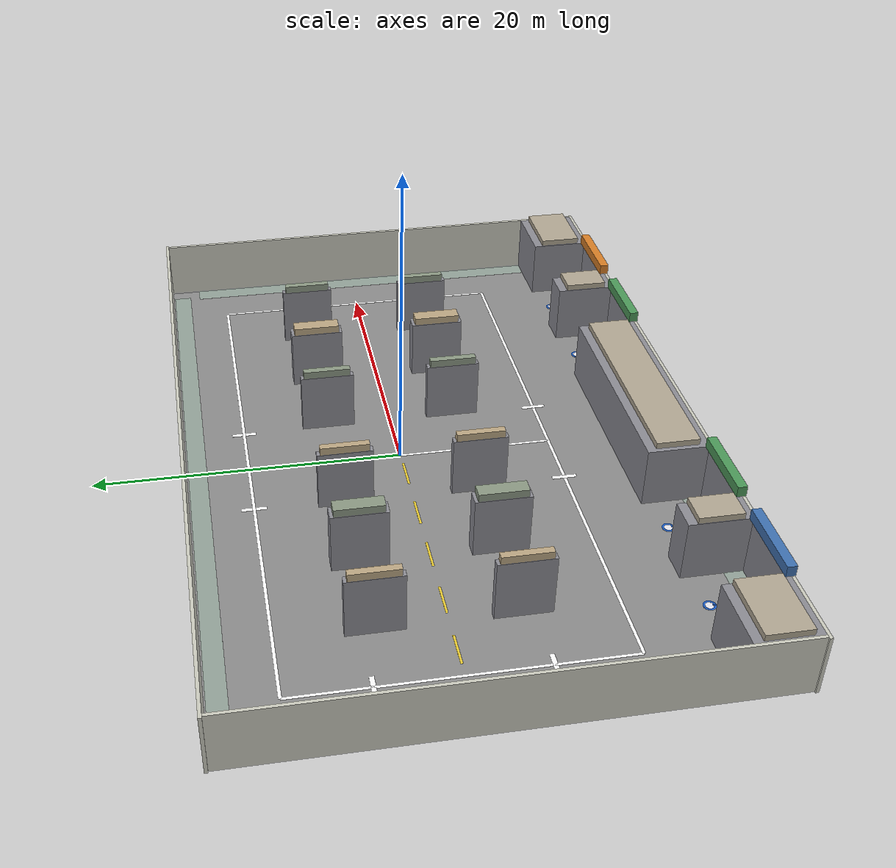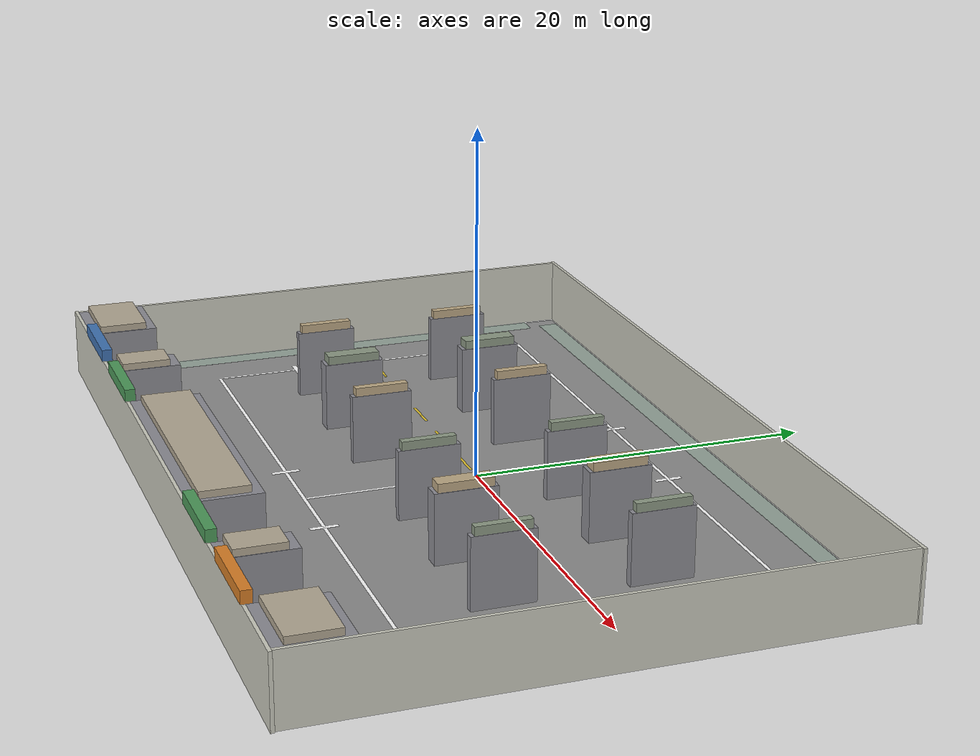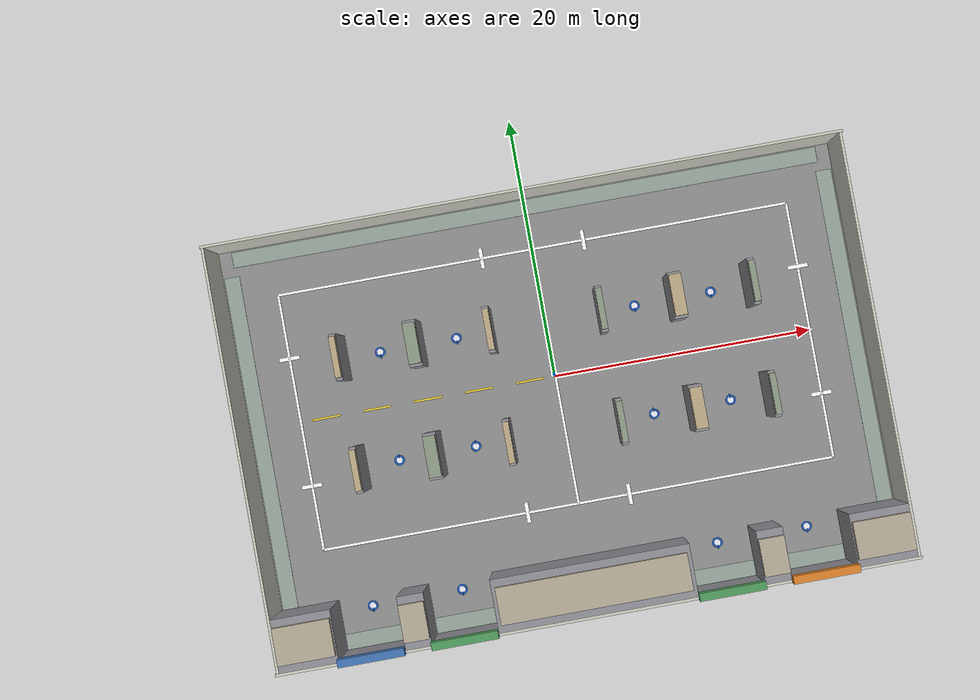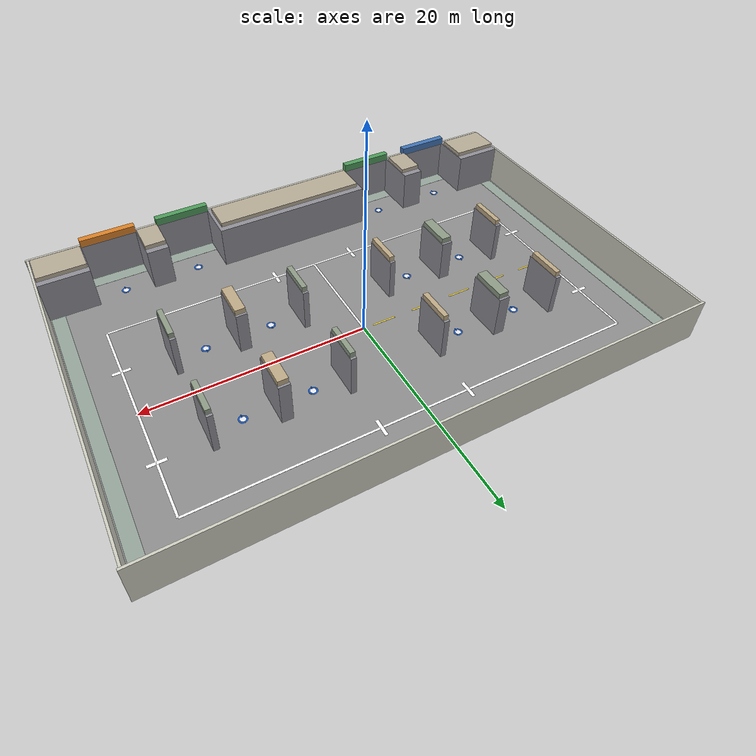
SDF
<?xml version="1.0" ?>
<sdf version="1.8">
  <world name="warehouse">

    <!-- The arena's 2 ms fixed step at 500 Hz, so joint rates measured on
         the M4 arena stay comparable here. -->
    <physics type="ode">
      <max_step_size>0.002</max_step_size>
      <real_time_factor>1.0</real_time_factor>
      <real_time_update_rate>500</real_time_update_rate>
    </physics>

    <plugin name="gz::sim::systems::Physics" filename="libgz-sim-physics-system.so"/>
    <plugin name="gz::sim::systems::UserCommands" filename="libgz-sim-user-commands-system.so"/>
    <plugin name="gz::sim::systems::SceneBroadcaster" filename="libgz-sim-scene-broadcaster-system.so"/>

    <!-- Required by the vehicle's three gpu_lidar sensors. Without this no
         scan topic is ever advertised and the failure is silent. -->
    <plugin name="gz::sim::systems::Sensors" filename="libgz-sim-sensors-system.so">
      <render_engine>ogre2</render_engine>
    </plugin>

    <!-- ======================= GUI CONFIGURATION ====================== -->
    <gui fullscreen="0">

      <plugin filename="MinimalScene" name="3D View">
        <gz-gui>
          <title>3D View</title>
          <property type="bool" key="showTitleBar">false</property>
          <property type="string" key="state">docked</property>
        </gz-gui>
        <engine>ogre2</engine>
        <scene>scene</scene>
        <ambient_light>1.0 1.0 1.0</ambient_light>
        <background_color>0.7 0.7 0.7</background_color>
        <!-- Looking north east from over the south west corner, so the
             dock apron, both charging bays and the west end of the rack
             block are in frame with no camera move. -->
        <camera_pose>-19.0 -16.0 12.0 0 0.52 0.72</camera_pose>
      </plugin>

      <plugin filename="GzSceneManager" name="Scene Manager">
        <gz-gui>
          <property key="resizable" type="bool">false</property>
          <property key="width" type="double">5</property>
          <property key="height" type="double">5</property>
          <property key="state" type="string">floating</property>
          <property key="showTitleBar" type="bool">false</property>
        </gz-gui>
      </plugin>

      <plugin filename="InteractiveViewControl" name="Interactive view control">
        <gz-gui>
          <property key="resizable" type="bool">false</property>
          <property key="width" type="double">5</property>
          <property key="height" type="double">5</property>
          <property key="state" type="string">floating</property>
          <property key="showTitleBar" type="bool">false</property>
        </gz-gui>
      </plugin>

      <plugin filename="CameraTracking" name="Camera Tracking">
        <gz-gui>
          <property key="resizable" type="bool">false</property>
          <property key="width" type="double">5</property>
          <property key="height" type="double">5</property>
          <property key="state" type="string">floating</property>
          <property key="showTitleBar" type="bool">false</property>
        </gz-gui>
      </plugin>

      <plugin filename="EntityContextMenuPlugin" name="Entity context menu">
        <gz-gui>
          <property key="state" type="string">floating</property>
          <property key="width" type="double">5</property>
          <property key="height" type="double">5</property>
          <property key="showTitleBar" type="bool">false</property>
        </gz-gui>
      </plugin>

      <plugin filename="WorldControl" name="World control">
        <gz-gui>
          <title>World control</title>
          <property type="bool" key="showTitleBar">false</property>
          <property type="bool" key="resizable">false</property>
          <property type="double" key="height">72</property>
          <property type="double" key="z">1</property>
          <property type="string" key="state">floating</property>
          <anchors target="3D View">
            <line own="left" target="left"/>
            <line own="bottom" target="bottom"/>
          </anchors>
        </gz-gui>
        <play_pause>true</play_pause>
        <step>true</step>
        <start_paused>false</start_paused>
        <use_event>true</use_event>
      </plugin>

      <!-- The real time factor readout, on screen for any recording. It is
           NOT a measurement instrument: the value it shows is gz's smoothed
           instantaneous factor. -->
      <plugin filename="WorldStats" name="World stats">
        <gz-gui>
          <title>World stats</title>
          <property type="bool" key="showTitleBar">false</property>
          <property type="bool" key="resizable">false</property>
          <property type="double" key="height">110</property>
          <property type="double" key="width">290</property>
          <property type="double" key="z">1</property>
          <property type="string" key="state">floating</property>
          <anchors target="3D View">
            <line own="right" target="right"/>
            <line own="bottom" target="bottom"/>
          </anchors>
        </gz-gui>
        <sim_time>true</sim_time>
        <real_time>true</real_time>
        <real_time_factor>true</real_time_factor>
        <iterations>true</iterations>
      </plugin>

      <!-- The beams. Docked rather than floating so the topic and display
           type combo boxes are visible without hunting: which scanner is on
           screen is not guessable from the picture. -->
      <plugin filename="VisualizeLidar" name="Visualize Lidar">
        <gz-gui>
          <title>Visualize lidar</title>
          <property type="string" key="state">docked</property>
        </gz-gui>
      </plugin>

      <plugin filename="Screenshot" name="Screenshot">
        <gz-gui>
          <property type="bool" key="showTitleBar">false</property>
          <property type="string" key="state">floating</property>
          <property type="double" key="width">100</property>
          <property type="double" key="height">50</property>
        </gz-gui>
      </plugin>

    </gui>

    <scene>
      <ambient>1 1 1 1</ambient>
      <background>0.7 0.7 0.7 1</background>
      <shadows>false</shadows>
      <grid>false</grid>
    </scene>

    <light name="sun" type="directional">
      <cast_shadows>false</cast_shadows>
      <pose>0 0 12 0 0 0</pose>
      <diffuse>1.0 1.0 1.0 1</diffuse>
      <specular>0.2 0.2 0.2 1</specular>
      <direction>-0.3 0.3 -1.0</direction>
    </light>

    <gravity>0 0 -9.8</gravity>

    <!-- ============================ Floor ============================ -->
    <!-- Plain concrete, mu 1.0 as in the arena: the tricycle has a single
         driven wheel and a slippery floor turns traction figures into tyre
         slip figures. Plane 48 x 32, inner hall faces. -->
    <model name="Floor">
      <static>true</static>
      <pose>0 -2 0 0 0 0</pose>
      <link name="link">
        <collision name="collision">
          <geometry>
            <plane><normal>0 0 1</normal><size>48 32</size></plane>
          </geometry>
          <surface>
            <friction><ode><mu>1.0</mu><mu2>1.0</mu2></ode></friction>
          </surface>
        </collision>
        <visual name="visual">
          <geometry>
            <plane><normal>0 0 1</normal><size>48 32</size></plane>
          </geometry>
          <material>
            <ambient>0.55 0.55 0.55 1</ambient>
            <diffuse>0.55 0.55 0.55 1</diffuse>
          </material>
        </visual>
      </link>
    </model>

    <!-- ======================= Perimeter walls ======================= -->
    <!-- 0.20 thick, 4.00 high, inner faces at x = +-24.00 and
         y = -18.00 / +14.00. No dock door cut: annex bays are the only
         way through the south strip. -->
    <model name="WallNorth">
      <static>true</static>
      <link name="link">
        <collision name="wallnorth_collision">
          <pose>0.000 14.100 2.000 0 0 0</pose>
          <geometry><box><size>48.600 0.200 4.000</size></box></geometry>
        </collision>
        <visual name="wallnorth_visual">
          <pose>0.000 14.100 2.000 0 0 0</pose>
          <geometry><box><size>48.600 0.200 4.000</size></box></geometry>
          <material><ambient>0.80 0.80 0.75 1</ambient><diffuse>0.80 0.80 0.75 1</diffuse></material>
        </visual>
      </link>
    </model>
    <model name="WallSouth">
      <static>true</static>
      <link name="link">
        <collision name="wallsouth_collision">
          <pose>0.000 -18.100 2.000 0 0 0</pose>
          <geometry><box><size>48.600 0.200 4.000</size></box></geometry>
        </collision>
        <visual name="wallsouth_visual">
          <pose>0.000 -18.100 2.000 0 0 0</pose>
          <geometry><box><size>48.600 0.200 4.000</size></box></geometry>
          <material><ambient>0.80 0.80 0.75 1</ambient><diffuse>0.80 0.80 0.75 1</diffuse></material>
        </visual>
      </link>
    </model>
    <model name="WallEast">
      <static>true</static>
      <link name="link">
        <collision name="walleast_collision">
          <pose>24.100 -2.000 2.000 0 0 0</pose>
          <geometry><box><size>0.200 32.000 4.000</size></box></geometry>
        </collision>
        <visual name="walleast_visual">
          <pose>24.100 -2.000 2.000 0 0 0</pose>
          <geometry><box><size>0.200 32.000 4.000</size></box></geometry>
          <material><ambient>0.80 0.80 0.75 1</ambient><diffuse>0.80 0.80 0.75 1</diffuse></material>
        </visual>
      </link>
    </model>
    <model name="WallWest">
      <static>true</static>
      <link name="link">
        <collision name="wallwest_collision">
          <pose>-24.100 -2.000 2.000 0 0 0</pose>
          <geometry><box><size>0.200 32.000 4.000</size></box></geometry>
        </collision>
        <visual name="wallwest_visual">
          <pose>-24.100 -2.000 2.000 0 0 0</pose>
          <geometry><box><size>0.200 32.000 4.000</size></box></geometry>
          <material><ambient>0.80 0.80 0.75 1</ambient><diffuse>0.80 0.80 0.75 1</diffuse></material>
        </visual>
      </link>
    </model>
    <!-- ======================= Obstacles ======================== -->
    <model name="RackNW1">
      <static>true</static>
      <pose>-15.750 4.250 2.000 0 0 0</pose>
      <link name="link">
        <collision name="collision">
          <geometry><box><size>0.500 3.500 4.000</size></box></geometry>
        </collision>
        <visual name="visual">
          <geometry><box><size>0.500 3.500 4.000</size></box></geometry>
          <material>
            <ambient>0.45 0.45 0.48 1</ambient>
            <diffuse>0.55 0.55 0.58 1</diffuse>
          </material>
        </visual>
      </link>
    </model>
    <model name="RackNW2">
      <static>true</static>
      <pose>-10.000 4.250 2.000 0 0 0</pose>
      <link name="link">
        <collision name="collision">
          <geometry><box><size>1.000 3.500 4.000</size></box></geometry>
        </collision>
        <visual name="visual">
          <geometry><box><size>1.000 3.500 4.000</size></box></geometry>
          <material>
            <ambient>0.45 0.45 0.48 1</ambient>
            <diffuse>0.55 0.55 0.58 1</diffuse>
          </material>
        </visual>
      </link>
    </model>
    <model name="RackNW3">
      <static>true</static>
      <pose>-4.250 4.250 2.000 0 0 0</pose>
      <link name="link">
        <collision name="collision">
          <geometry><box><size>0.500 3.500 4.000</size></box></geometry>
        </collision>
        <visual name="visual">
          <geometry><box><size>0.500 3.500 4.000</size></box></geometry>
          <material>
            <ambient>0.45 0.45 0.48 1</ambient>
            <diffuse>0.55 0.55 0.58 1</diffuse>
          </material>
        </visual>
      </link>
    </model>
    <model name="RackNE1">
      <static>true</static>
      <pose>4.250 4.250 2.000 0 0 0</pose>
      <link name="link">
        <collision name="collision">
          <geometry><box><size>0.500 3.500 4.000</size></box></geometry>
        </collision>
        <visual name="visual">
          <geometry><box><size>0.500 3.500 4.000</size></box></geometry>
          <material>
            <ambient>0.45 0.45 0.48 1</ambient>
            <diffuse>0.55 0.55 0.58 1</diffuse>
          </material>
        </visual>
      </link>
    </model>
    <model name="RackNE2">
      <static>true</static>
      <pose>10.000 4.250 2.000 0 0 0</pose>
      <link name="link">
        <collision name="collision">
          <geometry><box><size>1.000 3.500 4.000</size></box></geometry>
        </collision>
        <visual name="visual">
          <geometry><box><size>1.000 3.500 4.000</size></box></geometry>
          <material>
            <ambient>0.45 0.45 0.48 1</ambient>
            <diffuse>0.55 0.55 0.58 1</diffuse>
          </material>
        </visual>
      </link>
    </model>
    <model name="RackNE3">
      <static>true</static>
      <pose>15.750 4.250 2.000 0 0 0</pose>
      <link name="link">
        <collision name="collision">
          <geometry><box><size>0.500 3.500 4.000</size></box></geometry>
        </collision>
        <visual name="visual">
          <geometry><box><size>0.500 3.500 4.000</size></box></geometry>
          <material>
            <ambient>0.45 0.45 0.48 1</ambient>
            <diffuse>0.55 0.55 0.58 1</diffuse>
          </material>
        </visual>
      </link>
    </model>
    <model name="RackSW1">
      <static>true</static>
      <pose>-15.750 -4.250 2.000 0 0 0</pose>
      <link name="link">
        <collision name="collision">
          <geometry><box><size>0.500 3.500 4.000</size></box></geometry>
        </collision>
        <visual name="visual">
          <geometry><box><size>0.500 3.500 4.000</size></box></geometry>
          <material>
            <ambient>0.45 0.45 0.48 1</ambient>
            <diffuse>0.55 0.55 0.58 1</diffuse>
          </material>
        </visual>
      </link>
    </model>
    <model name="RackSW2">
      <static>true</static>
      <pose>-10.000 -4.250 2.000 0 0 0</pose>
      <link name="link">
        <collision name="collision">
          <geometry><box><size>1.000 3.500 4.000</size></box></geometry>
        </collision>
        <visual name="visual">
          <geometry><box><size>1.000 3.500 4.000</size></box></geometry>
          <material>
            <ambient>0.45 0.45 0.48 1</ambient>
            <diffuse>0.55 0.55 0.58 1</diffuse>
          </material>
        </visual>
      </link>
    </model>
    <model name="RackSW3">
      <static>true</static>
      <pose>-4.250 -4.250 2.000 0 0 0</pose>
      <link name="link">
        <collision name="collision">
          <geometry><box><size>0.500 3.500 4.000</size></box></geometry>
        </collision>
        <visual name="visual">
          <geometry><box><size>0.500 3.500 4.000</size></box></geometry>
          <material>
            <ambient>0.45 0.45 0.48 1</ambient>
            <diffuse>0.55 0.55 0.58 1</diffuse>
          </material>
        </visual>
      </link>
    </model>
    <model name="RackSE1">
      <static>true</static>
      <pose>4.250 -4.250 2.000 0 0 0</pose>
      <link name="link">
        <collision name="collision">
          <geometry><box><size>0.500 3.500 4.000</size></box></geometry>
        </collision>
        <visual name="visual">
          <geometry><box><size>0.500 3.500 4.000</size></box></geometry>
          <material>
            <ambient>0.45 0.45 0.48 1</ambient>
            <diffuse>0.55 0.55 0.58 1</diffuse>
          </material>
        </visual>
      </link>
    </model>
    <model name="RackSE2">
      <static>true</static>
      <pose>10.000 -4.250 2.000 0 0 0</pose>
      <link name="link">
        <collision name="collision">
          <geometry><box><size>1.000 3.500 4.000</size></box></geometry>
        </collision>
        <visual name="visual">
          <geometry><box><size>1.000 3.500 4.000</size></box></geometry>
          <material>
            <ambient>0.45 0.45 0.48 1</ambient>
            <diffuse>0.55 0.55 0.58 1</diffuse>
          </material>
        </visual>
      </link>
    </model>
    <model name="RackSE3">
      <static>true</static>
      <pose>15.750 -4.250 2.000 0 0 0</pose>
      <link name="link">
        <collision name="collision">
          <geometry><box><size>0.500 3.500 4.000</size></box></geometry>
        </collision>
        <visual name="visual">
          <geometry><box><size>0.500 3.500 4.000</size></box></geometry>
          <material>
            <ambient>0.45 0.45 0.48 1</ambient>
            <diffuse>0.55 0.55 0.58 1</diffuse>
          </material>
        </visual>
      </link>
    </model>
    <model name="AnnexW">
      <static>true</static>
      <pose>-21.750 -16.000 2.000 0 0 0</pose>
      <link name="link">
        <collision name="collision">
          <geometry><box><size>4.500 4.000 4.000</size></box></geometry>
        </collision>
        <visual name="visual">
          <geometry><box><size>4.500 4.000 4.000</size></box></geometry>
          <material>
            <ambient>0.45 0.45 0.48 1</ambient>
            <diffuse>0.55 0.55 0.58 1</diffuse>
          </material>
        </visual>
      </link>
    </model>
    <model name="AnnexA">
      <static>true</static>
      <pose>-13.500 -16.000 2.000 0 0 0</pose>
      <link name="link">
        <collision name="collision">
          <geometry><box><size>2.000 4.000 4.000</size></box></geometry>
        </collision>
        <visual name="visual">
          <geometry><box><size>2.000 4.000 4.000</size></box></geometry>
          <material>
            <ambient>0.45 0.45 0.48 1</ambient>
            <diffuse>0.55 0.55 0.58 1</diffuse>
          </material>
        </visual>
      </link>
    </model>
    <model name="AnnexB">
      <static>true</static>
      <pose>0.000 -16.000 2.000 0 0 0</pose>
      <link name="link">
        <collision name="collision">
          <geometry><box><size>15.000 4.000 4.000</size></box></geometry>
        </collision>
        <visual name="visual">
          <geometry><box><size>15.000 4.000 4.000</size></box></geometry>
          <material>
            <ambient>0.45 0.45 0.48 1</ambient>
            <diffuse>0.55 0.55 0.58 1</diffuse>
          </material>
        </visual>
      </link>
    </model>
    <model name="AnnexC">
      <static>true</static>
      <pose>13.500 -16.000 2.000 0 0 0</pose>
      <link name="link">
        <collision name="collision">
          <geometry><box><size>2.000 4.000 4.000</size></box></geometry>
        </collision>
        <visual name="visual">
          <geometry><box><size>2.000 4.000 4.000</size></box></geometry>
          <material>
            <ambient>0.45 0.45 0.48 1</ambient>
            <diffuse>0.55 0.55 0.58 1</diffuse>
          </material>
        </visual>
      </link>
    </model>
    <model name="AnnexE">
      <static>true</static>
      <pose>21.750 -16.000 2.000 0 0 0</pose>
      <link name="link">
        <collision name="collision">
          <geometry><box><size>4.500 4.000 4.000</size></box></geometry>
        </collision>
        <visual name="visual">
          <geometry><box><size>4.500 4.000 4.000</size></box></geometry>
          <material>
            <ambient>0.45 0.45 0.48 1</ambient>
            <diffuse>0.55 0.55 0.58 1</diffuse>
          </material>
        </visual>
      </link>
    </model>
    <model name="BayS9Back">
      <static>true</static>
      <pose>-17.000 -17.950 2.000 0 0 0</pose>
      <link name="link">
        <collision name="collision">
          <geometry><box><size>5.000 0.100 4.000</size></box></geometry>
        </collision>
        <visual name="visual">
          <geometry><box><size>5.000 0.100 4.000</size></box></geometry>
          <material>
            <ambient>0.45 0.45 0.48 1</ambient>
            <diffuse>0.55 0.55 0.58 1</diffuse>
          </material>
        </visual>
      </link>
    </model>
    <model name="BayS10Back">
      <static>true</static>
      <pose>-10.000 -17.950 2.000 0 0 0</pose>
      <link name="link">
        <collision name="collision">
          <geometry><box><size>5.000 0.100 4.000</size></box></geometry>
        </collision>
        <visual name="visual">
          <geometry><box><size>5.000 0.100 4.000</size></box></geometry>
          <material>
            <ambient>0.45 0.45 0.48 1</ambient>
            <diffuse>0.55 0.55 0.58 1</diffuse>
          </material>
        </visual>
      </link>
    </model>
    <model name="BayS11Back">
      <static>true</static>
      <pose>10.000 -17.950 2.000 0 0 0</pose>
      <link name="link">
        <collision name="collision">
          <geometry><box><size>5.000 0.100 4.000</size></box></geometry>
        </collision>
        <visual name="visual">
          <geometry><box><size>5.000 0.100 4.000</size></box></geometry>
          <material>
            <ambient>0.45 0.45 0.48 1</ambient>
            <diffuse>0.55 0.55 0.58 1</diffuse>
          </material>
        </visual>
      </link>
    </model>
    <model name="BayS12Back">
      <static>true</static>
      <pose>17.000 -17.950 2.000 0 0 0</pose>
      <link name="link">
        <collision name="collision">
          <geometry><box><size>5.000 0.100 4.000</size></box></geometry>
        </collision>
        <visual name="visual">
          <geometry><box><size>5.000 0.100 4.000</size></box></geometry>
          <material>
            <ambient>0.45 0.45 0.48 1</ambient>
            <diffuse>0.55 0.55 0.58 1</diffuse>
          </material>
        </visual>
      </link>
    </model>
    <model name="StationS1Paint">
      <static>true</static>
      <pose>-13.000 4.250 0 0 0 -1.570796</pose>
      <link name="link">
        <visual name="disc">
          <pose>0 0 0.003 0 0 0</pose>
          <geometry><cylinder><radius>0.40</radius><length>0.006</length></cylinder></geometry>
          <material><ambient>0.10 0.35 0.75 1</ambient><diffuse>0.10 0.35 0.75 1</diffuse></material>
        </visual>
        <visual name="core">
          <pose>0 0 0.004 0 0 0</pose>
          <geometry><cylinder><radius>0.26</radius><length>0.006</length></cylinder></geometry>
          <material><ambient>0.92 0.92 0.95 1</ambient><diffuse>0.92 0.92 0.95 1</diffuse></material>
        </visual>
        <visual name="tick">
          <pose>0.330 0.000 0.005 0 0 0.000</pose>
          <geometry><box><size>0.30 0.08 0.006</size></box></geometry>
          <material><ambient>0.10 0.35 0.75 1</ambient><diffuse>0.10 0.35 0.75 1</diffuse></material>
        </visual>
      </link>
    </model>
    <model name="StationS2Paint">
      <static>true</static>
      <pose>-7.000 4.250 0 0 0 -1.570796</pose>
      <link name="link">
        <visual name="disc">
          <pose>0 0 0.003 0 0 0</pose>
          <geometry><cylinder><radius>0.40</radius><length>0.006</length></cylinder></geometry>
          <material><ambient>0.10 0.35 0.75 1</ambient><diffuse>0.10 0.35 0.75 1</diffuse></material>
        </visual>
        <visual name="core">
          <pose>0 0 0.004 0 0 0</pose>
          <geometry><cylinder><radius>0.26</radius><length>0.006</length></cylinder></geometry>
          <material><ambient>0.92 0.92 0.95 1</ambient><diffuse>0.92 0.92 0.95 1</diffuse></material>
        </visual>
        <visual name="tick">
          <pose>0.330 0.000 0.005 0 0 0.000</pose>
          <geometry><box><size>0.30 0.08 0.006</size></box></geometry>
          <material><ambient>0.10 0.35 0.75 1</ambient><diffuse>0.10 0.35 0.75 1</diffuse></material>
        </visual>
      </link>
    </model>
    <model name="StationS3Paint">
      <static>true</static>
      <pose>-13.000 -4.250 0 0 0 1.570796</pose>
      <link name="link">
        <visual name="disc">
          <pose>0 0 0.003 0 0 0</pose>
          <geometry><cylinder><radius>0.40</radius><length>0.006</length></cylinder></geometry>
          <material><ambient>0.10 0.35 0.75 1</ambient><diffuse>0.10 0.35 0.75 1</diffuse></material>
        </visual>
        <visual name="core">
          <pose>0 0 0.004 0 0 0</pose>
          <geometry><cylinder><radius>0.26</radius><length>0.006</length></cylinder></geometry>
          <material><ambient>0.92 0.92 0.95 1</ambient><diffuse>0.92 0.92 0.95 1</diffuse></material>
        </visual>
        <visual name="tick">
          <pose>0.330 0.000 0.005 0 0 0.000</pose>
          <geometry><box><size>0.30 0.08 0.006</size></box></geometry>
          <material><ambient>0.10 0.35 0.75 1</ambient><diffuse>0.10 0.35 0.75 1</diffuse></material>
        </visual>
      </link>
    </model>
    <model name="StationS4Paint">
      <static>true</static>
      <pose>-7.000 -4.250 0 0 0 1.570796</pose>
      <link name="link">
        <visual name="disc">
          <pose>0 0 0.003 0 0 0</pose>
          <geometry><cylinder><radius>0.40</radius><length>0.006</length></cylinder></geometry>
          <material><ambient>0.10 0.35 0.75 1</ambient><diffuse>0.10 0.35 0.75 1</diffuse></material>
        </visual>
        <visual name="core">
          <pose>0 0 0.004 0 0 0</pose>
          <geometry><cylinder><radius>0.26</radius><length>0.006</length></cylinder></geometry>
          <material><ambient>0.92 0.92 0.95 1</ambient><diffuse>0.92 0.92 0.95 1</diffuse></material>
        </visual>
        <visual name="tick">
          <pose>0.330 0.000 0.005 0 0 0.000</pose>
          <geometry><box><size>0.30 0.08 0.006</size></box></geometry>
          <material><ambient>0.10 0.35 0.75 1</ambient><diffuse>0.10 0.35 0.75 1</diffuse></material>
        </visual>
      </link>
    </model>
    <model name="StationS5Paint">
      <static>true</static>
      <pose>7.000 4.250 0 0 0 -1.570796</pose>
      <link name="link">
        <visual name="disc">
          <pose>0 0 0.003 0 0 0</pose>
          <geometry><cylinder><radius>0.40</radius><length>0.006</length></cylinder></geometry>
          <material><ambient>0.10 0.35 0.75 1</ambient><diffuse>0.10 0.35 0.75 1</diffuse></material>
        </visual>
        <visual name="core">
          <pose>0 0 0.004 0 0 0</pose>
          <geometry><cylinder><radius>0.26</radius><length>0.006</length></cylinder></geometry>
          <material><ambient>0.92 0.92 0.95 1</ambient><diffuse>0.92 0.92 0.95 1</diffuse></material>
        </visual>
        <visual name="tick">
          <pose>0.330 0.000 0.005 0 0 0.000</pose>
          <geometry><box><size>0.30 0.08 0.006</size></box></geometry>
          <material><ambient>0.10 0.35 0.75 1</ambient><diffuse>0.10 0.35 0.75 1</diffuse></material>
        </visual>
      </link>
    </model>
    <model name="StationS6Paint">
      <static>true</static>
      <pose>13.000 4.250 0 0 0 -1.570796</pose>
      <link name="link">
        <visual name="disc">
          <pose>0 0 0.003 0 0 0</pose>
          <geometry><cylinder><radius>0.40</radius><length>0.006</length></cylinder></geometry>
          <material><ambient>0.10 0.35 0.75 1</ambient><diffuse>0.10 0.35 0.75 1</diffuse></material>
        </visual>
        <visual name="core">
          <pose>0 0 0.004 0 0 0</pose>
          <geometry><cylinder><radius>0.26</radius><length>0.006</length></cylinder></geometry>
          <material><ambient>0.92 0.92 0.95 1</ambient><diffuse>0.92 0.92 0.95 1</diffuse></material>
        </visual>
        <visual name="tick">
          <pose>0.330 0.000 0.005 0 0 0.000</pose>
          <geometry><box><size>0.30 0.08 0.006</size></box></geometry>
          <material><ambient>0.10 0.35 0.75 1</ambient><diffuse>0.10 0.35 0.75 1</diffuse></material>
        </visual>
      </link>
    </model>
    <model name="StationS7Paint">
      <static>true</static>
      <pose>7.000 -4.250 0 0 0 1.570796</pose>
      <link name="link">
        <visual name="disc">
          <pose>0 0 0.003 0 0 0</pose>
          <geometry><cylinder><radius>0.40</radius><length>0.006</length></cylinder></geometry>
          <material><ambient>0.10 0.35 0.75 1</ambient><diffuse>0.10 0.35 0.75 1</diffuse></material>
        </visual>
        <visual name="core">
          <pose>0 0 0.004 0 0 0</pose>
          <geometry><cylinder><radius>0.26</radius><length>0.006</length></cylinder></geometry>
          <material><ambient>0.92 0.92 0.95 1</ambient><diffuse>0.92 0.92 0.95 1</diffuse></material>
        </visual>
        <visual name="tick">
          <pose>0.330 0.000 0.005 0 0 0.000</pose>
          <geometry><box><size>0.30 0.08 0.006</size></box></geometry>
          <material><ambient>0.10 0.35 0.75 1</ambient><diffuse>0.10 0.35 0.75 1</diffuse></material>
        </visual>
      </link>
    </model>
    <model name="StationS8Paint">
      <static>true</static>
      <pose>13.000 -4.250 0 0 0 1.570796</pose>
      <link name="link">
        <visual name="disc">
          <pose>0 0 0.003 0 0 0</pose>
          <geometry><cylinder><radius>0.40</radius><length>0.006</length></cylinder></geometry>
          <material><ambient>0.10 0.35 0.75 1</ambient><diffuse>0.10 0.35 0.75 1</diffuse></material>
        </visual>
        <visual name="core">
          <pose>0 0 0.004 0 0 0</pose>
          <geometry><cylinder><radius>0.26</radius><length>0.006</length></cylinder></geometry>
          <material><ambient>0.92 0.92 0.95 1</ambient><diffuse>0.92 0.92 0.95 1</diffuse></material>
        </visual>
        <visual name="tick">
          <pose>0.330 0.000 0.005 0 0 0.000</pose>
          <geometry><box><size>0.30 0.08 0.006</size></box></geometry>
          <material><ambient>0.10 0.35 0.75 1</ambient><diffuse>0.10 0.35 0.75 1</diffuse></material>
        </visual>
      </link>
    </model>
    <model name="StationS9Paint">
      <static>true</static>
      <pose>-17.000 -14.900 0 0 0 -1.570796</pose>
      <link name="link">
        <visual name="disc">
          <pose>0 0 0.003 0 0 0</pose>
          <geometry><cylinder><radius>0.40</radius><length>0.006</length></cylinder></geometry>
          <material><ambient>0.10 0.35 0.75 1</ambient><diffuse>0.10 0.35 0.75 1</diffuse></material>
        </visual>
        <visual name="core">
          <pose>0 0 0.004 0 0 0</pose>
          <geometry><cylinder><radius>0.26</radius><length>0.006</length></cylinder></geometry>
          <material><ambient>0.92 0.92 0.95 1</ambient><diffuse>0.92 0.92 0.95 1</diffuse></material>
        </visual>
        <visual name="tick">
          <pose>0.330 0.000 0.005 0 0 0.000</pose>
          <geometry><box><size>0.30 0.08 0.006</size></box></geometry>
          <material><ambient>0.10 0.35 0.75 1</ambient><diffuse>0.10 0.35 0.75 1</diffuse></material>
        </visual>
      </link>
    </model>
    <model name="StationS10Paint">
      <static>true</static>
      <pose>-10.000 -14.900 0 0 0 -1.570796</pose>
      <link name="link">
        <visual name="disc">
          <pose>0 0 0.003 0 0 0</pose>
          <geometry><cylinder><radius>0.40</radius><length>0.006</length></cylinder></geometry>
          <material><ambient>0.10 0.35 0.75 1</ambient><diffuse>0.10 0.35 0.75 1</diffuse></material>
        </visual>
        <visual name="core">
          <pose>0 0 0.004 0 0 0</pose>
          <geometry><cylinder><radius>0.26</radius><length>0.006</length></cylinder></geometry>
          <material><ambient>0.92 0.92 0.95 1</ambient><diffuse>0.92 0.92 0.95 1</diffuse></material>
        </visual>
        <visual name="tick">
          <pose>0.330 0.000 0.005 0 0 0.000</pose>
          <geometry><box><size>0.30 0.08 0.006</size></box></geometry>
          <material><ambient>0.10 0.35 0.75 1</ambient><diffuse>0.10 0.35 0.75 1</diffuse></material>
        </visual>
      </link>
    </model>
    <model name="StationS11Paint">
      <static>true</static>
      <pose>10.000 -14.900 0 0 0 -1.570796</pose>
      <link name="link">
        <visual name="disc">
          <pose>0 0 0.003 0 0 0</pose>
          <geometry><cylinder><radius>0.40</radius><length>0.006</length></cylinder></geometry>
          <material><ambient>0.10 0.35 0.75 1</ambient><diffuse>0.10 0.35 0.75 1</diffuse></material>
        </visual>
        <visual name="core">
          <pose>0 0 0.004 0 0 0</pose>
          <geometry><cylinder><radius>0.26</radius><length>0.006</length></cylinder></geometry>
          <material><ambient>0.92 0.92 0.95 1</ambient><diffuse>0.92 0.92 0.95 1</diffuse></material>
        </visual>
        <visual name="tick">
          <pose>0.330 0.000 0.005 0 0 0.000</pose>
          <geometry><box><size>0.30 0.08 0.006</size></box></geometry>
          <material><ambient>0.10 0.35 0.75 1</ambient><diffuse>0.10 0.35 0.75 1</diffuse></material>
        </visual>
      </link>
    </model>
    <model name="StationS12Paint">
      <static>true</static>
      <pose>17.000 -14.900 0 0 0 -1.570796</pose>
      <link name="link">
        <visual name="disc">
          <pose>0 0 0.003 0 0 0</pose>
          <geometry><cylinder><radius>0.40</radius><length>0.006</length></cylinder></geometry>
          <material><ambient>0.10 0.35 0.75 1</ambient><diffuse>0.10 0.35 0.75 1</diffuse></material>
        </visual>
        <visual name="core">
          <pose>0 0 0.004 0 0 0</pose>
          <geometry><cylinder><radius>0.26</radius><length>0.006</length></cylinder></geometry>
          <material><ambient>0.92 0.92 0.95 1</ambient><diffuse>0.92 0.92 0.95 1</diffuse></material>
        </visual>
        <visual name="tick">
          <pose>0.330 0.000 0.005 0 0 0.000</pose>
          <geometry><box><size>0.30 0.08 0.006</size></box></geometry>
          <material><ambient>0.10 0.35 0.75 1</ambient><diffuse>0.10 0.35 0.75 1</diffuse></material>
        </visual>
      </link>
    </model>
    <model name="PaintRingNorth">
      <static>true</static>
      <pose>0.000 10.000 0.005 0 0 0</pose>
      <link name="link">
        <visual name="v">
          <geometry><box><size>40.000 0.200 0.006</size></box></geometry>
          <material><ambient>1 1 1 1</ambient><diffuse>1 1 1 1</diffuse></material>
        </visual>
      </link>
    </model>
    <model name="PaintRingSouth">
      <static>true</static>
      <pose>0.000 -10.000 0.005 0 0 0</pose>
      <link name="link">
        <visual name="v">
          <geometry><box><size>40.000 0.200 0.006</size></box></geometry>
          <material><ambient>1 1 1 1</ambient><diffuse>1 1 1 1</diffuse></material>
        </visual>
      </link>
    </model>
    <model name="PaintRingWest">
      <static>true</static>
      <pose>-20.000 0.000 0.005 0 0 0</pose>
      <link name="link">
        <visual name="v">
          <geometry><box><size>0.200 20.000 0.006</size></box></geometry>
          <material><ambient>1 1 1 1</ambient><diffuse>1 1 1 1</diffuse></material>
        </visual>
      </link>
    </model>
    <model name="PaintRingEast">
      <static>true</static>
      <pose>20.000 0.000 0.005 0 0 0</pose>
      <link name="link">
        <visual name="v">
          <geometry><box><size>0.200 20.000 0.006</size></box></geometry>
          <material><ambient>1 1 1 1</ambient><diffuse>1 1 1 1</diffuse></material>
        </visual>
      </link>
    </model>
    <model name="PaintSpine">
      <static>true</static>
      <pose>0.000 0.000 0.005 0 0 0</pose>
      <link name="link">
        <visual name="v">
          <geometry><box><size>0.200 20.000 0.006</size></box></geometry>
          <material><ambient>1 1 1 1</ambient><diffuse>1 1 1 1</diffuse></material>
        </visual>
      </link>
    </model>
    <model name="PaintPickDash0">
      <static>true</static>
      <pose>-18.000 0.000 0.005 0 0 0</pose>
      <link name="link">
        <visual name="v">
          <geometry><box><size>2.200 0.150 0.006</size></box></geometry>
          <material><ambient>0.92 0.80 0.20 1</ambient><diffuse>0.92 0.80 0.20 1</diffuse></material>
        </visual>
      </link>
    </model>
    <model name="PaintPickDash1">
      <static>true</static>
      <pose>-14.000 0.000 0.005 0 0 0</pose>
      <link name="link">
        <visual name="v">
          <geometry><box><size>2.200 0.150 0.006</size></box></geometry>
          <material><ambient>0.92 0.80 0.20 1</ambient><diffuse>0.92 0.80 0.20 1</diffuse></material>
        </visual>
      </link>
    </model>
    <model name="PaintPickDash2">
      <static>true</static>
      <pose>-10.000 0.000 0.005 0 0 0</pose>
      <link name="link">
        <visual name="v">
          <geometry><box><size>2.200 0.150 0.006</size></box></geometry>
          <material><ambient>0.92 0.80 0.20 1</ambient><diffuse>0.92 0.80 0.20 1</diffuse></material>
        </visual>
      </link>
    </model>
    <model name="PaintPickDash3">
      <static>true</static>
      <pose>-6.000 0.000 0.005 0 0 0</pose>
      <link name="link">
        <visual name="v">
          <geometry><box><size>2.200 0.150 0.006</size></box></geometry>
          <material><ambient>0.92 0.80 0.20 1</ambient><diffuse>0.92 0.80 0.20 1</diffuse></material>
        </visual>
      </link>
    </model>
    <model name="PaintPickDash4">
      <static>true</static>
      <pose>-2.000 0.000 0.005 0 0 0</pose>
      <link name="link">
        <visual name="v">
          <geometry><box><size>2.200 0.150 0.006</size></box></geometry>
          <material><ambient>0.92 0.80 0.20 1</ambient><diffuse>0.92 0.80 0.20 1</diffuse></material>
        </visual>
      </link>
    </model>
    <model name="PaintPickDash5">
      <static>true</static>
      <pose>2.000 0.000 0.005 0 0 0</pose>
      <link name="link">
        <visual name="v">
          <geometry><box><size>2.200 0.150 0.006</size></box></geometry>
          <material><ambient>0.92 0.80 0.20 1</ambient><diffuse>0.92 0.80 0.20 1</diffuse></material>
        </visual>
      </link>
    </model>
    <model name="PaintPickDash6">
      <static>true</static>
      <pose>6.000 0.000 0.005 0 0 0</pose>
      <link name="link">
        <visual name="v">
          <geometry><box><size>2.200 0.150 0.006</size></box></geometry>
          <material><ambient>0.92 0.80 0.20 1</ambient><diffuse>0.92 0.80 0.20 1</diffuse></material>
        </visual>
      </link>
    </model>
    <model name="PaintPickDash7">
      <static>true</static>
      <pose>10.000 0.000 0.005 0 0 0</pose>
      <link name="link">
        <visual name="v">
          <geometry><box><size>2.200 0.150 0.006</size></box></geometry>
          <material><ambient>0.92 0.80 0.20 1</ambient><diffuse>0.92 0.80 0.20 1</diffuse></material>
        </visual>
      </link>
    </model>
    <model name="PaintPickDash8">
      <static>true</static>
      <pose>14.000 0.000 0.005 0 0 0</pose>
      <link name="link">
        <visual name="v">
          <geometry><box><size>2.200 0.150 0.006</size></box></geometry>
          <material><ambient>0.92 0.80 0.20 1</ambient><diffuse>0.92 0.80 0.20 1</diffuse></material>
        </visual>
      </link>
    </model>
    <model name="PaintPickDash9">
      <static>true</static>
      <pose>18.000 0.000 0.005 0 0 0</pose>
      <link name="link">
        <visual name="v">
          <geometry><box><size>2.200 0.150 0.006</size></box></geometry>
          <material><ambient>0.92 0.80 0.20 1</ambient><diffuse>0.92 0.80 0.20 1</diffuse></material>
        </visual>
      </link>
    </model>
    <model name="RackNW1Load">
      <static>true</static>
      <pose>-15.750 4.250 4.250 0 0 0</pose>
      <link name="link">
        <visual name="v">
          <geometry><box><size>0.460 3.080 0.500</size></box></geometry>
          <material><ambient>0.74 0.66 0.52 1</ambient><diffuse>0.74 0.66 0.52 1</diffuse></material>
        </visual>
      </link>
    </model>
    <model name="RackNW2Load">
      <static>true</static>
      <pose>-10.000 4.250 4.250 0 0 0</pose>
      <link name="link">
        <visual name="v">
          <geometry><box><size>0.920 3.080 0.500</size></box></geometry>
          <material><ambient>0.55 0.60 0.52 1</ambient><diffuse>0.55 0.60 0.52 1</diffuse></material>
        </visual>
      </link>
    </model>
    <model name="RackNW3Load">
      <static>true</static>
      <pose>-4.250 4.250 4.250 0 0 0</pose>
      <link name="link">
        <visual name="v">
          <geometry><box><size>0.460 3.080 0.500</size></box></geometry>
          <material><ambient>0.74 0.66 0.52 1</ambient><diffuse>0.74 0.66 0.52 1</diffuse></material>
        </visual>
      </link>
    </model>
    <model name="RackNE1Load">
      <static>true</static>
      <pose>4.250 4.250 4.250 0 0 0</pose>
      <link name="link">
        <visual name="v">
          <geometry><box><size>0.460 3.080 0.500</size></box></geometry>
          <material><ambient>0.55 0.60 0.52 1</ambient><diffuse>0.55 0.60 0.52 1</diffuse></material>
        </visual>
      </link>
    </model>
    <model name="RackNE2Load">
      <static>true</static>
      <pose>10.000 4.250 4.250 0 0 0</pose>
      <link name="link">
        <visual name="v">
          <geometry><box><size>0.920 3.080 0.500</size></box></geometry>
          <material><ambient>0.74 0.66 0.52 1</ambient><diffuse>0.74 0.66 0.52 1</diffuse></material>
        </visual>
      </link>
    </model>
    <model name="RackNE3Load">
      <static>true</static>
      <pose>15.750 4.250 4.250 0 0 0</pose>
      <link name="link">
        <visual name="v">
          <geometry><box><size>0.460 3.080 0.500</size></box></geometry>
          <material><ambient>0.55 0.60 0.52 1</ambient><diffuse>0.55 0.60 0.52 1</diffuse></material>
        </visual>
      </link>
    </model>
    <model name="RackSW1Load">
      <static>true</static>
      <pose>-15.750 -4.250 4.250 0 0 0</pose>
      <link name="link">
        <visual name="v">
          <geometry><box><size>0.460 3.080 0.500</size></box></geometry>
          <material><ambient>0.74 0.66 0.52 1</ambient><diffuse>0.74 0.66 0.52 1</diffuse></material>
        </visual>
      </link>
    </model>
    <model name="RackSW2Load">
      <static>true</static>
      <pose>-10.000 -4.250 4.250 0 0 0</pose>
      <link name="link">
        <visual name="v">
          <geometry><box><size>0.920 3.080 0.500</size></box></geometry>
          <material><ambient>0.55 0.60 0.52 1</ambient><diffuse>0.55 0.60 0.52 1</diffuse></material>
        </visual>
      </link>
    </model>
    <model name="RackSW3Load">
      <static>true</static>
      <pose>-4.250 -4.250 4.250 0 0 0</pose>
      <link name="link">
        <visual name="v">
          <geometry><box><size>0.460 3.080 0.500</size></box></geometry>
          <material><ambient>0.74 0.66 0.52 1</ambient><diffuse>0.74 0.66 0.52 1</diffuse></material>
        </visual>
      </link>
    </model>
    <model name="RackSE1Load">
      <static>true</static>
      <pose>4.250 -4.250 4.250 0 0 0</pose>
      <link name="link">
        <visual name="v">
          <geometry><box><size>0.460 3.080 0.500</size></box></geometry>
          <material><ambient>0.55 0.60 0.52 1</ambient><diffuse>0.55 0.60 0.52 1</diffuse></material>
        </visual>
      </link>
    </model>
    <model name="RackSE2Load">
      <static>true</static>
      <pose>10.000 -4.250 4.250 0 0 0</pose>
      <link name="link">
        <visual name="v">
          <geometry><box><size>0.920 3.080 0.500</size></box></geometry>
          <material><ambient>0.74 0.66 0.52 1</ambient><diffuse>0.74 0.66 0.52 1</diffuse></material>
        </visual>
      </link>
    </model>
    <model name="RackSE3Load">
      <static>true</static>
      <pose>15.750 -4.250 4.250 0 0 0</pose>
      <link name="link">
        <visual name="v">
          <geometry><box><size>0.460 3.080 0.500</size></box></geometry>
          <material><ambient>0.55 0.60 0.52 1</ambient><diffuse>0.55 0.60 0.52 1</diffuse></material>
        </visual>
      </link>
    </model>
    <model name="AnnexWLoad">
      <static>true</static>
      <pose>-21.750 -16.000 4.200 0 0 0</pose>
      <link name="link">
        <visual name="v">
          <geometry><box><size>4.320 2.800 0.400</size></box></geometry>
          <material><ambient>0.70 0.66 0.58 1</ambient><diffuse>0.70 0.66 0.58 1</diffuse></material>
        </visual>
      </link>
    </model>
    <model name="AnnexALoad">
      <static>true</static>
      <pose>-13.500 -16.000 4.200 0 0 0</pose>
      <link name="link">
        <visual name="v">
          <geometry><box><size>1.920 2.800 0.400</size></box></geometry>
          <material><ambient>0.70 0.66 0.58 1</ambient><diffuse>0.70 0.66 0.58 1</diffuse></material>
        </visual>
      </link>
    </model>
    <model name="AnnexBLoad">
      <static>true</static>
      <pose>0.000 -16.000 4.200 0 0 0</pose>
      <link name="link">
        <visual name="v">
          <geometry><box><size>14.400 2.800 0.400</size></box></geometry>
          <material><ambient>0.70 0.66 0.58 1</ambient><diffuse>0.70 0.66 0.58 1</diffuse></material>
        </visual>
      </link>
    </model>
    <model name="AnnexCLoad">
      <static>true</static>
      <pose>13.500 -16.000 4.200 0 0 0</pose>
      <link name="link">
        <visual name="v">
          <geometry><box><size>1.920 2.800 0.400</size></box></geometry>
          <material><ambient>0.70 0.66 0.58 1</ambient><diffuse>0.70 0.66 0.58 1</diffuse></material>
        </visual>
      </link>
    </model>
    <model name="AnnexELoad">
      <static>true</static>
      <pose>21.750 -16.000 4.200 0 0 0</pose>
      <link name="link">
        <visual name="v">
          <geometry><box><size>4.320 2.800 0.400</size></box></geometry>
          <material><ambient>0.70 0.66 0.58 1</ambient><diffuse>0.70 0.66 0.58 1</diffuse></material>
        </visual>
      </link>
    </model>
    <model name="BayS9BackHeader">
      <static>true</static>
      <pose>-17.000 -17.950 4.350 0 0 0</pose>
      <link name="link">
        <visual name="v">
          <geometry><box><size>5.000 0.600 0.700</size></box></geometry>
          <material><ambient>0.25 0.45 0.70 1</ambient><diffuse>0.25 0.45 0.70 1</diffuse></material>
        </visual>
      </link>
    </model>
    <model name="BayS10BackHeader">
      <static>true</static>
      <pose>-10.000 -17.950 4.350 0 0 0</pose>
      <link name="link">
        <visual name="v">
          <geometry><box><size>5.000 0.600 0.700</size></box></geometry>
          <material><ambient>0.30 0.60 0.35 1</ambient><diffuse>0.30 0.60 0.35 1</diffuse></material>
        </visual>
      </link>
    </model>
    <model name="BayS11BackHeader">
      <static>true</static>
      <pose>10.000 -17.950 4.350 0 0 0</pose>
      <link name="link">
        <visual name="v">
          <geometry><box><size>5.000 0.600 0.700</size></box></geometry>
          <material><ambient>0.30 0.60 0.35 1</ambient><diffuse>0.30 0.60 0.35 1</diffuse></material>
        </visual>
      </link>
    </model>
    <model name="BayS12BackHeader">
      <static>true</static>
      <pose>17.000 -17.950 4.350 0 0 0</pose>
      <link name="link">
        <visual name="v">
          <geometry><box><size>5.000 0.600 0.700</size></box></geometry>
          <material><ambient>0.85 0.50 0.15 1</ambient><diffuse>0.85 0.50 0.15 1</diffuse></material>
        </visual>
      </link>
    </model>
    <model name="WalkN">
      <static>true</static>
      <pose>0.000 13.300 0.005 0 0 0</pose>
      <link name="link">
        <visual name="v">
          <geometry><box><size>46.000 1.200 0.006</size></box></geometry>
          <material><ambient>0.58 0.64 0.60 1</ambient><diffuse>0.58 0.64 0.60 1</diffuse></material>
        </visual>
      </link>
    </model>
    <model name="WalkS">
      <static>true</static>
      <pose>0.000 -17.300 0.005 0 0 0</pose>
      <link name="link">
        <visual name="v">
          <geometry><box><size>46.000 1.200 0.006</size></box></geometry>
          <material><ambient>0.58 0.64 0.60 1</ambient><diffuse>0.58 0.64 0.60 1</diffuse></material>
        </visual>
      </link>
    </model>
    <model name="WalkW">
      <static>true</static>
      <pose>-23.300 -2.000 0.005 0 0 0</pose>
      <link name="link">
        <visual name="v">
          <geometry><box><size>1.200 28.000 0.006</size></box></geometry>
          <material><ambient>0.58 0.64 0.60 1</ambient><diffuse>0.58 0.64 0.60 1</diffuse></material>
        </visual>
      </link>
    </model>
    <model name="WalkE">
      <static>true</static>
      <pose>23.300 -2.000 0.005 0 0 0</pose>
      <link name="link">
        <visual name="v">
          <geometry><box><size>1.200 28.000 0.006</size></box></geometry>
          <material><ambient>0.58 0.64 0.60 1</ambient><diffuse>0.58 0.64 0.60 1</diffuse></material>
        </visual>
      </link>
    </model>
    <model name="LaneN1">
      <static>true</static>
      <pose>-4.000 10.000 0.005 0 0 0</pose>
      <link name="link">
        <visual name="v">
          <geometry><box><size>0.300 1.600 0.006</size></box></geometry>
          <material><ambient>1 1 1 1</ambient><diffuse>1 1 1 1</diffuse></material>
        </visual>
      </link>
    </model>
    <model name="LaneN2">
      <static>true</static>
      <pose>4.000 10.000 0.005 0 0 0</pose>
      <link name="link">
        <visual name="v">
          <geometry><box><size>0.300 1.600 0.006</size></box></geometry>
          <material><ambient>1 1 1 1</ambient><diffuse>1 1 1 1</diffuse></material>
        </visual>
      </link>
    </model>
    <model name="LaneS1">
      <static>true</static>
      <pose>-4.000 -10.000 0.005 0 0 0</pose>
      <link name="link">
        <visual name="v">
          <geometry><box><size>0.300 1.600 0.006</size></box></geometry>
          <material><ambient>1 1 1 1</ambient><diffuse>1 1 1 1</diffuse></material>
        </visual>
      </link>
    </model>
    <model name="LaneS2">
      <static>true</static>
      <pose>4.000 -10.000 0.005 0 0 0</pose>
      <link name="link">
        <visual name="v">
          <geometry><box><size>0.300 1.600 0.006</size></box></geometry>
          <material><ambient>1 1 1 1</ambient><diffuse>1 1 1 1</diffuse></material>
        </visual>
      </link>
    </model>
    <model name="LaneW1">
      <static>true</static>
      <pose>-20.000 -5.000 0.005 0 0 0</pose>
      <link name="link">
        <visual name="v">
          <geometry><box><size>1.600 0.300 0.006</size></box></geometry>
          <material><ambient>1 1 1 1</ambient><diffuse>1 1 1 1</diffuse></material>
        </visual>
      </link>
    </model>
    <model name="LaneW2">
      <static>true</static>
      <pose>-20.000 5.000 0.005 0 0 0</pose>
      <link name="link">
        <visual name="v">
          <geometry><box><size>1.600 0.300 0.006</size></box></geometry>
          <material><ambient>1 1 1 1</ambient><diffuse>1 1 1 1</diffuse></material>
        </visual>
      </link>
    </model>
    <model name="LaneE1">
      <static>true</static>
      <pose>20.000 -5.000 0.005 0 0 0</pose>
      <link name="link">
        <visual name="v">
          <geometry><box><size>1.600 0.300 0.006</size></box></geometry>
          <material><ambient>1 1 1 1</ambient><diffuse>1 1 1 1</diffuse></material>
        </visual>
      </link>
    </model>
    <model name="LaneE2">
      <static>true</static>
      <pose>20.000 5.000 0.005 0 0 0</pose>
      <link name="link">
        <visual name="v">
          <geometry><box><size>1.600 0.300 0.006</size></box></geometry>
          <material><ambient>1 1 1 1</ambient><diffuse>1 1 1 1</diffuse></material>
        </visual>
      </link>
    </model>
    <!-- ============== END DECORATION ============== -->
    <model name="OverheadCam">
      <static>true</static>
      <pose>0 -2 42 0 1.5707963 1.5707963</pose>
      <link name="link">
        <sensor name="overhead" type="camera">
          <always_on>1</always_on>
          <update_rate>10</update_rate>
          <topic>overhead/image</topic>
          <camera>
            <horizontal_fov>1.40</horizontal_fov>
            <image><width>1280</width><height>720</height>
                   <format>R8G8B8</format></image>
            <clip><near>1.0</near><far>80.0</far></clip>
          </camera>
        </sensor>
      </link>
    </model>
  </world>
</sdf>
